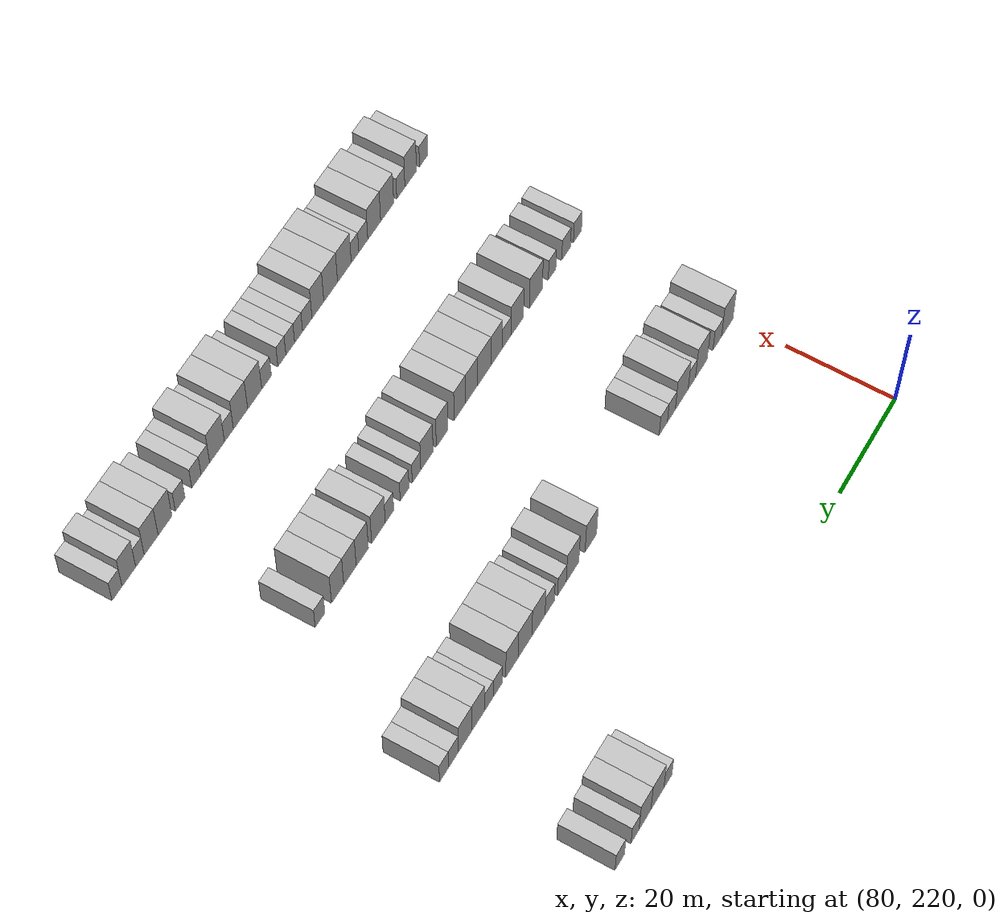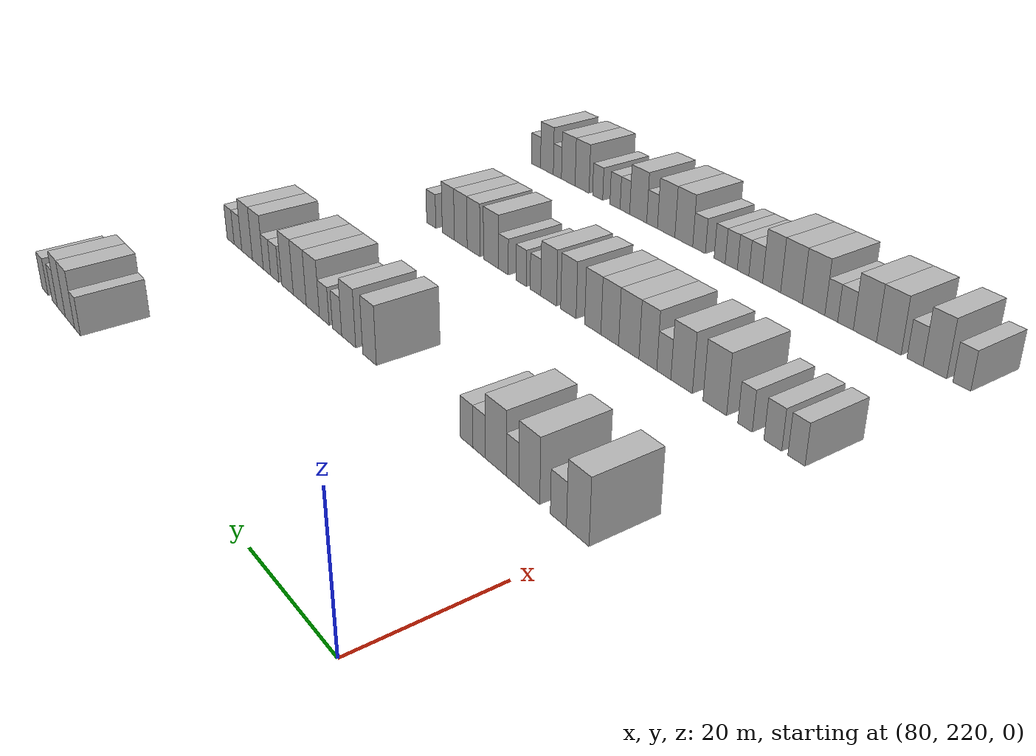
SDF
<sdf version="1.6">
 <world name="default">
  <model name="building_655">
   <static>1</static>
   <pose>85.0000 297.5379 0 0.000000 0.000000 0.000000</pose>
   <link name="link">
    <pose>0 0 3.00 0 0 0</pose>
    <collision name="collision"><geometry><box><size>10.0000 2.5687 6.0000</size></box></geometry></collision>
    <visual name="visual">
     <cast_shadows>0</cast_shadows>
     <geometry><box><size>10.0000 2.5687 6.0000</size></box></geometry>
     <material>
      <script>
       <uri>model://HANNAS_wall/materials/scripts</uri>
       <uri>model://HANNAS_wall/materials/textures</uri>
       <name>vrc/HANNAS_wall</name>
      </script>
     </material>
    </visual>
   </link>
  </model>
  <model name="building_656">
   <static>1</static>
   <pose>85.0000 300.8907 0 0.000000 0.000000 0.000000</pose>
   <link name="link">
    <pose>0 0 4.50 0 0 0</pose>
    <collision name="collision"><geometry><box><size>10.0000 4.1370 9.0000</size></box></geometry></collision>
    <visual name="visual">
     <cast_shadows>0</cast_shadows>
     <geometry><box><size>10.0000 4.1370 9.0000</size></box></geometry>
     <material>
      <script>
       <uri>model://HANNAS_wall/materials/scripts</uri>
       <uri>model://HANNAS_wall/materials/textures</uri>
       <name>vrc/HANNAS_wall</name>
      </script>
     </material>
    </visual>
   </link>
  </model>
  <model name="building_657">
   <static>1</static>
   <pose>85.0000 304.8185 0 0.000000 0.000000 0.000000</pose>
   <link name="link">
    <pose>0 0 4.50 0 0 0</pose>
    <collision name="collision"><geometry><box><size>10.0000 3.7185 9.0000</size></box></geometry></collision>
    <visual name="visual">
     <cast_shadows>0</cast_shadows>
     <geometry><box><size>10.0000 3.7185 9.0000</size></box></geometry>
     <material>
      <script>
       <uri>model://HANNAS_wall/materials/scripts</uri>
       <uri>model://HANNAS_wall/materials/textures</uri>
       <name>vrc/HANNAS_wall</name>
      </script>
     </material>
    </visual>
   </link>
  </model>
  <model name="building_658">
   <static>1</static>
   <pose>85.0000 307.9284 0 0.000000 0.000000 0.000000</pose>
   <link name="link">
    <pose>0 0 3.00 0 0 0</pose>
    <collision name="collision"><geometry><box><size>10.0000 2.5012 6.0000</size></box></geometry></collision>
    <visual name="visual">
     <cast_shadows>0</cast_shadows>
     <geometry><box><size>10.0000 2.5012 6.0000</size></box></geometry>
     <material>
      <script>
       <uri>model://HANNAS_wall/materials/scripts</uri>
       <uri>model://HANNAS_wall/materials/textures</uri>
       <name>vrc/HANNAS_wall</name>
      </script>
     </material>
    </visual>
   </link>
  </model>
  <model name="building_659">
   <static>1</static>
   <pose>85.0000 312.6503 0 0.000000 0.000000 0.000000</pose>
   <link name="link">
    <pose>0 0 3.00 0 0 0</pose>
    <collision name="collision"><geometry><box><size>10.0000 2.9426 6.0000</size></box></geometry></collision>
    <visual name="visual">
     <cast_shadows>0</cast_shadows>
     <geometry><box><size>10.0000 2.9426 6.0000</size></box></geometry>
     <material>
      <script>
       <uri>model://HANNAS_wall/materials/scripts</uri>
       <uri>model://HANNAS_wall/materials/textures</uri>
       <name>vrc/HANNAS_wall</name>
      </script>
     </material>
    </visual>
   </link>
  </model>
  <model name="building_862">
   <static>1</static>
   <pose>115.0000 221.7954 0 0.000000 0.000000 0.000000</pose>
   <link name="link">
    <pose>0 0 4.50 0 0 0</pose>
    <collision name="collision"><geometry><box><size>10.0000 4.0064 9.0000</size></box></geometry></collision>
    <visual name="visual">
     <cast_shadows>0</cast_shadows>
     <geometry><box><size>10.0000 4.0064 9.0000</size></box></geometry>
     <material>
      <script>
       <uri>model://HANNAS_wall/materials/scripts</uri>
       <uri>model://HANNAS_wall/materials/textures</uri>
       <name>vrc/HANNAS_wall</name>
      </script>
     </material>
    </visual>
   </link>
  </model>
  <model name="building_863">
   <static>1</static>
   <pose>115.0000 225.2836 0 0.000000 0.000000 0.000000</pose>
   <link name="link">
    <pose>0 0 3.00 0 0 0</pose>
    <collision name="collision"><geometry><box><size>10.0000 2.9700 6.0000</size></box></geometry></collision>
    <visual name="visual">
     <cast_shadows>0</cast_shadows>
     <geometry><box><size>10.0000 2.9700 6.0000</size></box></geometry>
     <material>
      <script>
       <uri>model://HANNAS_wall/materials/scripts</uri>
       <uri>model://HANNAS_wall/materials/textures</uri>
       <name>vrc/HANNAS_wall</name>
      </script>
     </material>
    </visual>
   </link>
  </model>
  <model name="building_864">
   <static>1</static>
   <pose>115.0000 230.7952 0 0.000000 0.000000 0.000000</pose>
   <link name="link">
    <pose>0 0 4.50 0 0 0</pose>
    <collision name="collision"><geometry><box><size>10.0000 4.0530 9.0000</size></box></geometry></collision>
    <visual name="visual">
     <cast_shadows>0</cast_shadows>
     <geometry><box><size>10.0000 4.0530 9.0000</size></box></geometry>
     <material>
      <script>
       <uri>model://HANNAS_wall/materials/scripts</uri>
       <uri>model://HANNAS_wall/materials/textures</uri>
       <name>vrc/HANNAS_wall</name>
      </script>
     </material>
    </visual>
   </link>
  </model>
  <model name="building_865">
   <static>1</static>
   <pose>115.0000 234.0746 0 0.000000 0.000000 0.000000</pose>
   <link name="link">
    <pose>0 0 3.00 0 0 0</pose>
    <collision name="collision"><geometry><box><size>10.0000 2.5057 6.0000</size></box></geometry></collision>
    <visual name="visual">
     <cast_shadows>0</cast_shadows>
     <geometry><box><size>10.0000 2.5057 6.0000</size></box></geometry>
     <material>
      <script>
       <uri>model://HANNAS_wall/materials/scripts</uri>
       <uri>model://HANNAS_wall/materials/textures</uri>
       <name>vrc/HANNAS_wall</name>
      </script>
     </material>
    </visual>
   </link>
  </model>
  <model name="building_866">
   <static>1</static>
   <pose>115.0000 237.5225 0 0.000000 0.000000 0.000000</pose>
   <link name="link">
    <pose>0 0 4.50 0 0 0</pose>
    <collision name="collision"><geometry><box><size>10.0000 4.3902 9.0000</size></box></geometry></collision>
    <visual name="visual">
     <cast_shadows>0</cast_shadows>
     <geometry><box><size>10.0000 4.3902 9.0000</size></box></geometry>
     <material>
      <script>
       <uri>model://HANNAS_wall/materials/scripts</uri>
       <uri>model://HANNAS_wall/materials/textures</uri>
       <name>vrc/HANNAS_wall</name>
      </script>
     </material>
    </visual>
   </link>
  </model>
  <model name="building_867">
   <static>1</static>
   <pose>115.0000 241.0570 0 0.000000 0.000000 0.000000</pose>
   <link name="link">
    <pose>0 0 3.00 0 0 0</pose>
    <collision name="collision"><geometry><box><size>10.0000 2.6788 6.0000</size></box></geometry></collision>
    <visual name="visual">
     <cast_shadows>0</cast_shadows>
     <geometry><box><size>10.0000 2.6788 6.0000</size></box></geometry>
     <material>
      <script>
       <uri>model://HANNAS_wall/materials/scripts</uri>
       <uri>model://HANNAS_wall/materials/textures</uri>
       <name>vrc/HANNAS_wall</name>
      </script>
     </material>
    </visual>
   </link>
  </model>
  <model name="building_868">
   <static>1</static>
   <pose>115.0000 243.7871 0 0.000000 0.000000 0.000000</pose>
   <link name="link">
    <pose>0 0 3.00 0 0 0</pose>
    <collision name="collision"><geometry><box><size>10.0000 2.7814 6.0000</size></box></geometry></collision>
    <visual name="visual">
     <cast_shadows>0</cast_shadows>
     <geometry><box><size>10.0000 2.7814 6.0000</size></box></geometry>
     <material>
      <script>
       <uri>model://HANNAS_wall/materials/scripts</uri>
       <uri>model://HANNAS_wall/materials/textures</uri>
       <name>vrc/HANNAS_wall</name>
      </script>
     </material>
    </visual>
   </link>
  </model>
  <model name="building_869">
   <static>1</static>
   <pose>115.0000 267.7866 0 0.000000 0.000000 0.000000</pose>
   <link name="link">
    <pose>0 0 4.50 0 0 0</pose>
    <collision name="collision"><geometry><box><size>10.0000 3.7392 9.0000</size></box></geometry></collision>
    <visual name="visual">
     <cast_shadows>0</cast_shadows>
     <geometry><box><size>10.0000 3.7392 9.0000</size></box></geometry>
     <material>
      <script>
       <uri>model://HANNAS_wall/materials/scripts</uri>
       <uri>model://HANNAS_wall/materials/textures</uri>
       <name>vrc/HANNAS_wall</name>
      </script>
     </material>
    </visual>
   </link>
  </model>
  <model name="building_870">
   <static>1</static>
   <pose>115.0000 273.6862 0 0.000000 0.000000 0.000000</pose>
   <link name="link">
    <pose>0 0 4.50 0 0 0</pose>
    <collision name="collision"><geometry><box><size>10.0000 4.0600 9.0000</size></box></geometry></collision>
    <visual name="visual">
     <cast_shadows>0</cast_shadows>
     <geometry><box><size>10.0000 4.0600 9.0000</size></box></geometry>
     <material>
      <script>
       <uri>model://HANNAS_wall/materials/scripts</uri>
       <uri>model://HANNAS_wall/materials/textures</uri>
       <name>vrc/HANNAS_wall</name>
      </script>
     </material>
    </visual>
   </link>
  </model>
  <model name="building_871">
   <static>1</static>
   <pose>115.0000 277.0938 0 0.000000 0.000000 0.000000</pose>
   <link name="link">
    <pose>0 0 3.00 0 0 0</pose>
    <collision name="collision"><geometry><box><size>10.0000 2.7552 6.0000</size></box></geometry></collision>
    <visual name="visual">
     <cast_shadows>0</cast_shadows>
     <geometry><box><size>10.0000 2.7552 6.0000</size></box></geometry>
     <material>
      <script>
       <uri>model://HANNAS_wall/materials/scripts</uri>
       <uri>model://HANNAS_wall/materials/textures</uri>
       <name>vrc/HANNAS_wall</name>
      </script>
     </material>
    </visual>
   </link>
  </model>
  <model name="building_872">
   <static>1</static>
   <pose>115.0000 280.9691 0 0.000000 0.000000 0.000000</pose>
   <link name="link">
    <pose>0 0 3.00 0 0 0</pose>
    <collision name="collision"><geometry><box><size>10.0000 2.9954 6.0000</size></box></geometry></collision>
    <visual name="visual">
     <cast_shadows>0</cast_shadows>
     <geometry><box><size>10.0000 2.9954 6.0000</size></box></geometry>
     <material>
      <script>
       <uri>model://HANNAS_wall/materials/scripts</uri>
       <uri>model://HANNAS_wall/materials/textures</uri>
       <name>vrc/HANNAS_wall</name>
      </script>
     </material>
    </visual>
   </link>
  </model>
  <model name="building_873">
   <static>1</static>
   <pose>115.0000 284.5456 0 0.000000 0.000000 0.000000</pose>
   <link name="link">
    <pose>0 0 4.50 0 0 0</pose>
    <collision name="collision"><geometry><box><size>10.0000 4.1577 9.0000</size></box></geometry></collision>
    <visual name="visual">
     <cast_shadows>0</cast_shadows>
     <geometry><box><size>10.0000 4.1577 9.0000</size></box></geometry>
     <material>
      <script>
       <uri>model://HANNAS_wall/materials/scripts</uri>
       <uri>model://HANNAS_wall/materials/textures</uri>
       <name>vrc/HANNAS_wall</name>
      </script>
     </material>
    </visual>
   </link>
  </model>
  <model name="building_874">
   <static>1</static>
   <pose>115.0000 288.7549 0 0.000000 0.000000 0.000000</pose>
   <link name="link">
    <pose>0 0 4.50 0 0 0</pose>
    <collision name="collision"><geometry><box><size>10.0000 4.2609 9.0000</size></box></geometry></collision>
    <visual name="visual">
     <cast_shadows>0</cast_shadows>
     <geometry><box><size>10.0000 4.2609 9.0000</size></box></geometry>
     <material>
      <script>
       <uri>model://HANNAS_wall/materials/scripts</uri>
       <uri>model://HANNAS_wall/materials/textures</uri>
       <name>vrc/HANNAS_wall</name>
      </script>
     </material>
    </visual>
   </link>
  </model>
  <model name="building_875">
   <static>1</static>
   <pose>115.0000 292.8371 0 0.000000 0.000000 0.000000</pose>
   <link name="link">
    <pose>0 0 4.50 0 0 0</pose>
    <collision name="collision"><geometry><box><size>10.0000 3.9036 9.0000</size></box></geometry></collision>
    <visual name="visual">
     <cast_shadows>0</cast_shadows>
     <geometry><box><size>10.0000 3.9036 9.0000</size></box></geometry>
     <material>
      <script>
       <uri>model://HANNAS_wall/materials/scripts</uri>
       <uri>model://HANNAS_wall/materials/textures</uri>
       <name>vrc/HANNAS_wall</name>
      </script>
     </material>
    </visual>
   </link>
  </model>
  <model name="building_876">
   <static>1</static>
   <pose>115.0000 297.2392 0 0.000000 0.000000 0.000000</pose>
   <link name="link">
    <pose>0 0 3.00 0 0 0</pose>
    <collision name="collision"><geometry><box><size>10.0000 2.9006 6.0000</size></box></geometry></collision>
    <visual name="visual">
     <cast_shadows>0</cast_shadows>
     <geometry><box><size>10.0000 2.9006 6.0000</size></box></geometry>
     <material>
      <script>
       <uri>model://HANNAS_wall/materials/scripts</uri>
       <uri>model://HANNAS_wall/materials/textures</uri>
       <name>vrc/HANNAS_wall</name>
      </script>
     </material>
    </visual>
   </link>
  </model>
  <model name="building_877">
   <static>1</static>
   <pose>115.0000 299.9895 0 0.000000 0.000000 0.000000</pose>
   <link name="link">
    <pose>0 0 3.00 0 0 0</pose>
    <collision name="collision"><geometry><box><size>10.0000 2.6001 6.0000</size></box></geometry></collision>
    <visual name="visual">
     <cast_shadows>0</cast_shadows>
     <geometry><box><size>10.0000 2.6001 6.0000</size></box></geometry>
     <material>
      <script>
       <uri>model://HANNAS_wall/materials/scripts</uri>
       <uri>model://HANNAS_wall/materials/textures</uri>
       <name>vrc/HANNAS_wall</name>
      </script>
     </material>
    </visual>
   </link>
  </model>
  <model name="building_878">
   <static>1</static>
   <pose>115.0000 303.2805 0 0.000000 0.000000 0.000000</pose>
   <link name="link">
    <pose>0 0 4.50 0 0 0</pose>
    <collision name="collision"><geometry><box><size>10.0000 3.9819 9.0000</size></box></geometry></collision>
    <visual name="visual">
     <cast_shadows>0</cast_shadows>
     <geometry><box><size>10.0000 3.9819 9.0000</size></box></geometry>
     <material>
      <script>
       <uri>model://HANNAS_wall/materials/scripts</uri>
       <uri>model://HANNAS_wall/materials/textures</uri>
       <name>vrc/HANNAS_wall</name>
      </script>
     </material>
    </visual>
   </link>
  </model>
  <model name="building_879">
   <static>1</static>
   <pose>115.0000 307.2741 0 0.000000 0.000000 0.000000</pose>
   <link name="link">
    <pose>0 0 4.50 0 0 0</pose>
    <collision name="collision"><geometry><box><size>10.0000 4.0054 9.0000</size></box></geometry></collision>
    <visual name="visual">
     <cast_shadows>0</cast_shadows>
     <geometry><box><size>10.0000 4.0054 9.0000</size></box></geometry>
     <material>
      <script>
       <uri>model://HANNAS_wall/materials/scripts</uri>
       <uri>model://HANNAS_wall/materials/textures</uri>
       <name>vrc/HANNAS_wall</name>
      </script>
     </material>
    </visual>
   </link>
  </model>
  <model name="building_880">
   <static>1</static>
   <pose>115.0000 310.7571 0 0.000000 0.000000 0.000000</pose>
   <link name="link">
    <pose>0 0 3.00 0 0 0</pose>
    <collision name="collision"><geometry><box><size>10.0000 2.9605 6.0000</size></box></geometry></collision>
    <visual name="visual">
     <cast_shadows>0</cast_shadows>
     <geometry><box><size>10.0000 2.9605 6.0000</size></box></geometry>
     <material>
      <script>
       <uri>model://HANNAS_wall/materials/scripts</uri>
       <uri>model://HANNAS_wall/materials/textures</uri>
       <name>vrc/HANNAS_wall</name>
      </script>
     </material>
    </visual>
   </link>
  </model>
  <model name="building_881">
   <static>1</static>
   <pose>115.0000 313.6159 0 0.000000 0.000000 0.000000</pose>
   <link name="link">
    <pose>0 0 3.00 0 0 0</pose>
    <collision name="collision"><geometry><box><size>10.0000 2.7571 6.0000</size></box></geometry></collision>
    <visual name="visual">
     <cast_shadows>0</cast_shadows>
     <geometry><box><size>10.0000 2.7571 6.0000</size></box></geometry>
     <material>
      <script>
       <uri>model://HANNAS_wall/materials/scripts</uri>
       <uri>model://HANNAS_wall/materials/textures</uri>
       <name>vrc/HANNAS_wall</name>
      </script>
     </material>
    </visual>
   </link>
  </model>
  <model name="building_1087">
   <static>1</static>
   <pose>145.0000 218.6086 0 0.000000 0.000000 0.000000</pose>
   <link name="link">
    <pose>0 0 3.00 0 0 0</pose>
    <collision name="collision"><geometry><box><size>10.0000 2.7559 6.0000</size></box></geometry></collision>
    <visual name="visual">
     <cast_shadows>0</cast_shadows>
     <geometry><box><size>10.0000 2.7559 6.0000</size></box></geometry>
     <material>
      <script>
       <uri>model://HANNAS_wall/materials/scripts</uri>
       <uri>model://HANNAS_wall/materials/textures</uri>
       <name>vrc/HANNAS_wall</name>
      </script>
     </material>
    </visual>
   </link>
  </model>
  <model name="building_1088">
   <static>1</static>
   <pose>145.0000 222.4659 0 0.000000 0.000000 0.000000</pose>
   <link name="link">
    <pose>0 0 3.00 0 0 0</pose>
    <collision name="collision"><geometry><box><size>10.0000 2.9586 6.0000</size></box></geometry></collision>
    <visual name="visual">
     <cast_shadows>0</cast_shadows>
     <geometry><box><size>10.0000 2.9586 6.0000</size></box></geometry>
     <material>
      <script>
       <uri>model://HANNAS_wall/materials/scripts</uri>
       <uri>model://HANNAS_wall/materials/textures</uri>
       <name>vrc/HANNAS_wall</name>
      </script>
     </material>
    </visual>
   </link>
  </model>
  <model name="building_1089">
   <static>1</static>
   <pose>145.0000 227.2015 0 0.000000 0.000000 0.000000</pose>
   <link name="link">
    <pose>0 0 3.00 0 0 0</pose>
    <collision name="collision"><geometry><box><size>10.0000 2.5126 6.0000</size></box></geometry></collision>
    <visual name="visual">
     <cast_shadows>0</cast_shadows>
     <geometry><box><size>10.0000 2.5126 6.0000</size></box></geometry>
     <material>
      <script>
       <uri>model://HANNAS_wall/materials/scripts</uri>
       <uri>model://HANNAS_wall/materials/textures</uri>
       <name>vrc/HANNAS_wall</name>
      </script>
     </material>
    </visual>
   </link>
  </model>
  <model name="building_1090">
   <static>1</static>
   <pose>145.0000 232.6195 0 0.000000 0.000000 0.000000</pose>
   <link name="link">
    <pose>0 0 4.50 0 0 0</pose>
    <collision name="collision"><geometry><box><size>10.0000 4.3235 9.0000</size></box></geometry></collision>
    <visual name="visual">
     <cast_shadows>0</cast_shadows>
     <geometry><box><size>10.0000 4.3235 9.0000</size></box></geometry>
     <material>
      <script>
       <uri>model://HANNAS_wall/materials/scripts</uri>
       <uri>model://HANNAS_wall/materials/textures</uri>
       <name>vrc/HANNAS_wall</name>
      </script>
     </material>
    </visual>
   </link>
  </model>
  <model name="building_1091">
   <static>1</static>
   <pose>145.0000 238.8709 0 0.000000 0.000000 0.000000</pose>
   <link name="link">
    <pose>0 0 4.50 0 0 0</pose>
    <collision name="collision"><geometry><box><size>10.0000 4.1792 9.0000</size></box></geometry></collision>
    <visual name="visual">
     <cast_shadows>0</cast_shadows>
     <geometry><box><size>10.0000 4.1792 9.0000</size></box></geometry>
     <material>
      <script>
       <uri>model://HANNAS_wall/materials/scripts</uri>
       <uri>model://HANNAS_wall/materials/textures</uri>
       <name>vrc/HANNAS_wall</name>
      </script>
     </material>
    </visual>
   </link>
  </model>
  <model name="building_1092">
   <static>1</static>
   <pose>145.0000 242.3662 0 0.000000 0.000000 0.000000</pose>
   <link name="link">
    <pose>0 0 3.00 0 0 0</pose>
    <collision name="collision"><geometry><box><size>10.0000 2.8114 6.0000</size></box></geometry></collision>
    <visual name="visual">
     <cast_shadows>0</cast_shadows>
     <geometry><box><size>10.0000 2.8114 6.0000</size></box></geometry>
     <material>
      <script>
       <uri>model://HANNAS_wall/materials/scripts</uri>
       <uri>model://HANNAS_wall/materials/textures</uri>
       <name>vrc/HANNAS_wall</name>
      </script>
     </material>
    </visual>
   </link>
  </model>
  <model name="building_1093">
   <static>1</static>
   <pose>145.0000 245.6088 0 0.000000 0.000000 0.000000</pose>
   <link name="link">
    <pose>0 0 4.50 0 0 0</pose>
    <collision name="collision"><geometry><box><size>10.0000 3.6739 9.0000</size></box></geometry></collision>
    <visual name="visual">
     <cast_shadows>0</cast_shadows>
     <geometry><box><size>10.0000 3.6739 9.0000</size></box></geometry>
     <material>
      <script>
       <uri>model://HANNAS_wall/materials/scripts</uri>
       <uri>model://HANNAS_wall/materials/textures</uri>
       <name>vrc/HANNAS_wall</name>
      </script>
     </material>
    </visual>
   </link>
  </model>
  <model name="building_1094">
   <static>1</static>
   <pose>145.0000 249.6107 0 0.000000 0.000000 0.000000</pose>
   <link name="link">
    <pose>0 0 4.50 0 0 0</pose>
    <collision name="collision"><geometry><box><size>10.0000 4.3299 9.0000</size></box></geometry></collision>
    <visual name="visual">
     <cast_shadows>0</cast_shadows>
     <geometry><box><size>10.0000 4.3299 9.0000</size></box></geometry>
     <material>
      <script>
       <uri>model://HANNAS_wall/materials/scripts</uri>
       <uri>model://HANNAS_wall/materials/textures</uri>
       <name>vrc/HANNAS_wall</name>
      </script>
     </material>
    </visual>
   </link>
  </model>
  <model name="building_1095">
   <static>1</static>
   <pose>145.0000 253.7339 0 0.000000 0.000000 0.000000</pose>
   <link name="link">
    <pose>0 0 4.50 0 0 0</pose>
    <collision name="collision"><geometry><box><size>10.0000 3.9165 9.0000</size></box></geometry></collision>
    <visual name="visual">
     <cast_shadows>0</cast_shadows>
     <geometry><box><size>10.0000 3.9165 9.0000</size></box></geometry>
     <material>
      <script>
       <uri>model://HANNAS_wall/materials/scripts</uri>
       <uri>model://HANNAS_wall/materials/textures</uri>
       <name>vrc/HANNAS_wall</name>
      </script>
     </material>
    </visual>
   </link>
  </model>
  <model name="building_1096">
   <static>1</static>
   <pose>145.0000 257.5340 0 0.000000 0.000000 0.000000</pose>
   <link name="link">
    <pose>0 0 4.50 0 0 0</pose>
    <collision name="collision"><geometry><box><size>10.0000 3.6835 9.0000</size></box></geometry></collision>
    <visual name="visual">
     <cast_shadows>0</cast_shadows>
     <geometry><box><size>10.0000 3.6835 9.0000</size></box></geometry>
     <material>
      <script>
       <uri>model://HANNAS_wall/materials/scripts</uri>
       <uri>model://HANNAS_wall/materials/textures</uri>
       <name>vrc/HANNAS_wall</name>
      </script>
     </material>
    </visual>
   </link>
  </model>
  <model name="building_1097">
   <static>1</static>
   <pose>145.0000 263.2091 0 0.000000 0.000000 0.000000</pose>
   <link name="link">
    <pose>0 0 4.50 0 0 0</pose>
    <collision name="collision"><geometry><box><size>10.0000 3.6668 9.0000</size></box></geometry></collision>
    <visual name="visual">
     <cast_shadows>0</cast_shadows>
     <geometry><box><size>10.0000 3.6668 9.0000</size></box></geometry>
     <material>
      <script>
       <uri>model://HANNAS_wall/materials/scripts</uri>
       <uri>model://HANNAS_wall/materials/textures</uri>
       <name>vrc/HANNAS_wall</name>
      </script>
     </material>
    </visual>
   </link>
  </model>
  <model name="building_1098">
   <static>1</static>
   <pose>145.0000 267.9923 0 0.000000 0.000000 0.000000</pose>
   <link name="link">
    <pose>0 0 4.50 0 0 0</pose>
    <collision name="collision"><geometry><box><size>10.0000 3.8995 9.0000</size></box></geometry></collision>
    <visual name="visual">
     <cast_shadows>0</cast_shadows>
     <geometry><box><size>10.0000 3.8995 9.0000</size></box></geometry>
     <material>
      <script>
       <uri>model://HANNAS_wall/materials/scripts</uri>
       <uri>model://HANNAS_wall/materials/textures</uri>
       <name>vrc/HANNAS_wall</name>
      </script>
     </material>
    </visual>
   </link>
  </model>
  <model name="building_1099">
   <static>1</static>
   <pose>145.0000 271.2844 0 0.000000 0.000000 0.000000</pose>
   <link name="link">
    <pose>0 0 3.00 0 0 0</pose>
    <collision name="collision"><geometry><box><size>10.0000 2.6846 6.0000</size></box></geometry></collision>
    <visual name="visual">
     <cast_shadows>0</cast_shadows>
     <geometry><box><size>10.0000 2.6846 6.0000</size></box></geometry>
     <material>
      <script>
       <uri>model://HANNAS_wall/materials/scripts</uri>
       <uri>model://HANNAS_wall/materials/textures</uri>
       <name>vrc/HANNAS_wall</name>
      </script>
     </material>
    </visual>
   </link>
  </model>
  <model name="building_1100">
   <static>1</static>
   <pose>145.0000 275.0013 0 0.000000 0.000000 0.000000</pose>
   <link name="link">
    <pose>0 0 3.00 0 0 0</pose>
    <collision name="collision"><geometry><box><size>10.0000 2.7493 6.0000</size></box></geometry></collision>
    <visual name="visual">
     <cast_shadows>0</cast_shadows>
     <geometry><box><size>10.0000 2.7493 6.0000</size></box></geometry>
     <material>
      <script>
       <uri>model://HANNAS_wall/materials/scripts</uri>
       <uri>model://HANNAS_wall/materials/textures</uri>
       <name>vrc/HANNAS_wall</name>
      </script>
     </material>
    </visual>
   </link>
  </model>
  <model name="building_1101">
   <static>1</static>
   <pose>145.0000 279.6919 0 0.000000 0.000000 0.000000</pose>
   <link name="link">
    <pose>0 0 3.00 0 0 0</pose>
    <collision name="collision"><geometry><box><size>10.0000 2.6320 6.0000</size></box></geometry></collision>
    <visual name="visual">
     <cast_shadows>0</cast_shadows>
     <geometry><box><size>10.0000 2.6320 6.0000</size></box></geometry>
     <material>
      <script>
       <uri>model://HANNAS_wall/materials/scripts</uri>
       <uri>model://HANNAS_wall/materials/textures</uri>
       <name>vrc/HANNAS_wall</name>
      </script>
     </material>
    </visual>
   </link>
  </model>
  <model name="building_1102">
   <static>1</static>
   <pose>145.0000 283.0985 0 0.000000 0.000000 0.000000</pose>
   <link name="link">
    <pose>0 0 4.50 0 0 0</pose>
    <collision name="collision"><geometry><box><size>10.0000 4.1812 9.0000</size></box></geometry></collision>
    <visual name="visual">
     <cast_shadows>0</cast_shadows>
     <geometry><box><size>10.0000 4.1812 9.0000</size></box></geometry>
     <material>
      <script>
       <uri>model://HANNAS_wall/materials/scripts</uri>
       <uri>model://HANNAS_wall/materials/textures</uri>
       <name>vrc/HANNAS_wall</name>
      </script>
     </material>
    </visual>
   </link>
  </model>
  <model name="building_1103">
   <static>1</static>
   <pose>145.0000 288.0449 0 0.000000 0.000000 0.000000</pose>
   <link name="link">
    <pose>0 0 4.50 0 0 0</pose>
    <collision name="collision"><geometry><box><size>10.0000 3.7116 9.0000</size></box></geometry></collision>
    <visual name="visual">
     <cast_shadows>0</cast_shadows>
     <geometry><box><size>10.0000 3.7116 9.0000</size></box></geometry>
     <material>
      <script>
       <uri>model://HANNAS_wall/materials/scripts</uri>
       <uri>model://HANNAS_wall/materials/textures</uri>
       <name>vrc/HANNAS_wall</name>
      </script>
     </material>
    </visual>
   </link>
  </model>
  <model name="building_1104">
   <static>1</static>
   <pose>145.0000 291.7874 0 0.000000 0.000000 0.000000</pose>
   <link name="link">
    <pose>0 0 4.50 0 0 0</pose>
    <collision name="collision"><geometry><box><size>10.0000 3.7734 9.0000</size></box></geometry></collision>
    <visual name="visual">
     <cast_shadows>0</cast_shadows>
     <geometry><box><size>10.0000 3.7734 9.0000</size></box></geometry>
     <material>
      <script>
       <uri>model://HANNAS_wall/materials/scripts</uri>
       <uri>model://HANNAS_wall/materials/textures</uri>
       <name>vrc/HANNAS_wall</name>
      </script>
     </material>
    </visual>
   </link>
  </model>
  <model name="building_1105">
   <static>1</static>
   <pose>145.0000 295.5164 0 0.000000 0.000000 0.000000</pose>
   <link name="link">
    <pose>0 0 4.50 0 0 0</pose>
    <collision name="collision"><geometry><box><size>10.0000 3.6847 9.0000</size></box></geometry></collision>
    <visual name="visual">
     <cast_shadows>0</cast_shadows>
     <geometry><box><size>10.0000 3.6847 9.0000</size></box></geometry>
     <material>
      <script>
       <uri>model://HANNAS_wall/materials/scripts</uri>
       <uri>model://HANNAS_wall/materials/textures</uri>
       <name>vrc/HANNAS_wall</name>
      </script>
     </material>
    </visual>
   </link>
  </model>
  <model name="building_1106">
   <static>1</static>
   <pose>145.0000 300.8026 0 0.000000 0.000000 0.000000</pose>
   <link name="link">
    <pose>0 0 3.00 0 0 0</pose>
    <collision name="collision"><geometry><box><size>10.0000 2.8877 6.0000</size></box></geometry></collision>
    <visual name="visual">
     <cast_shadows>0</cast_shadows>
     <geometry><box><size>10.0000 2.8877 6.0000</size></box></geometry>
     <material>
      <script>
       <uri>model://HANNAS_wall/materials/scripts</uri>
       <uri>model://HANNAS_wall/materials/textures</uri>
       <name>vrc/HANNAS_wall</name>
      </script>
     </material>
    </visual>
   </link>
  </model>
  <model name="building_1318">
   <static>1</static>
   <pose>175.0000 218.3453 0 0.000000 0.000000 0.000000</pose>
   <link name="link">
    <pose>0 0 3.00 0 0 0</pose>
    <collision name="collision"><geometry><box><size>10.0000 2.7789 6.0000</size></box></geometry></collision>
    <visual name="visual">
     <cast_shadows>0</cast_shadows>
     <geometry><box><size>10.0000 2.7789 6.0000</size></box></geometry>
     <material>
      <script>
       <uri>model://HANNAS_wall/materials/scripts</uri>
       <uri>model://HANNAS_wall/materials/textures</uri>
       <name>vrc/HANNAS_wall</name>
      </script>
     </material>
    </visual>
   </link>
  </model>
  <model name="building_1319">
   <static>1</static>
   <pose>175.0000 222.6469 0 0.000000 0.000000 0.000000</pose>
   <link name="link">
    <pose>0 0 4.50 0 0 0</pose>
    <collision name="collision"><geometry><box><size>10.0000 3.8243 9.0000</size></box></geometry></collision>
    <visual name="visual">
     <cast_shadows>0</cast_shadows>
     <geometry><box><size>10.0000 3.8243 9.0000</size></box></geometry>
     <material>
      <script>
       <uri>model://HANNAS_wall/materials/scripts</uri>
       <uri>model://HANNAS_wall/materials/textures</uri>
       <name>vrc/HANNAS_wall</name>
      </script>
     </material>
    </visual>
   </link>
  </model>
  <model name="building_1320">
   <static>1</static>
   <pose>175.0000 225.8965 0 0.000000 0.000000 0.000000</pose>
   <link name="link">
    <pose>0 0 3.00 0 0 0</pose>
    <collision name="collision"><geometry><box><size>10.0000 2.6749 6.0000</size></box></geometry></collision>
    <visual name="visual">
     <cast_shadows>0</cast_shadows>
     <geometry><box><size>10.0000 2.6749 6.0000</size></box></geometry>
     <material>
      <script>
       <uri>model://HANNAS_wall/materials/scripts</uri>
       <uri>model://HANNAS_wall/materials/textures</uri>
       <name>vrc/HANNAS_wall</name>
      </script>
     </material>
    </visual>
   </link>
  </model>
  <model name="building_1321">
   <static>1</static>
   <pose>175.0000 230.3620 0 0.000000 0.000000 0.000000</pose>
   <link name="link">
    <pose>0 0 4.50 0 0 0</pose>
    <collision name="collision"><geometry><box><size>10.0000 4.2560 9.0000</size></box></geometry></collision>
    <visual name="visual">
     <cast_shadows>0</cast_shadows>
     <geometry><box><size>10.0000 4.2560 9.0000</size></box></geometry>
     <material>
      <script>
       <uri>model://HANNAS_wall/materials/scripts</uri>
       <uri>model://HANNAS_wall/materials/textures</uri>
       <name>vrc/HANNAS_wall</name>
      </script>
     </material>
    </visual>
   </link>
  </model>
  <model name="building_1322">
   <static>1</static>
   <pose>175.0000 234.5758 0 0.000000 0.000000 0.000000</pose>
   <link name="link">
    <pose>0 0 4.50 0 0 0</pose>
    <collision name="collision"><geometry><box><size>10.0000 4.1717 9.0000</size></box></geometry></collision>
    <visual name="visual">
     <cast_shadows>0</cast_shadows>
     <geometry><box><size>10.0000 4.1717 9.0000</size></box></geometry>
     <material>
      <script>
       <uri>model://HANNAS_wall/materials/scripts</uri>
       <uri>model://HANNAS_wall/materials/textures</uri>
       <name>vrc/HANNAS_wall</name>
      </script>
     </material>
    </visual>
   </link>
  </model>
  <model name="building_1323">
   <static>1</static>
   <pose>175.0000 238.1075 0 0.000000 0.000000 0.000000</pose>
   <link name="link">
    <pose>0 0 3.00 0 0 0</pose>
    <collision name="collision"><geometry><box><size>10.0000 2.8917 6.0000</size></box></geometry></collision>
    <visual name="visual">
     <cast_shadows>0</cast_shadows>
     <geometry><box><size>10.0000 2.8917 6.0000</size></box></geometry>
     <material>
      <script>
       <uri>model://HANNAS_wall/materials/scripts</uri>
       <uri>model://HANNAS_wall/materials/textures</uri>
       <name>vrc/HANNAS_wall</name>
      </script>
     </material>
    </visual>
   </link>
  </model>
  <model name="building_1324">
   <static>1</static>
   <pose>175.0000 240.7659 0 0.000000 0.000000 0.000000</pose>
   <link name="link">
    <pose>0 0 3.00 0 0 0</pose>
    <collision name="collision"><geometry><box><size>10.0000 2.4250 6.0000</size></box></geometry></collision>
    <visual name="visual">
     <cast_shadows>0</cast_shadows>
     <geometry><box><size>10.0000 2.4250 6.0000</size></box></geometry>
     <material>
      <script>
       <uri>model://HANNAS_wall/materials/scripts</uri>
       <uri>model://HANNAS_wall/materials/textures</uri>
       <name>vrc/HANNAS_wall</name>
      </script>
     </material>
    </visual>
   </link>
  </model>
  <model name="building_1325">
   <static>1</static>
   <pose>175.0000 244.1641 0 0.000000 0.000000 0.000000</pose>
   <link name="link">
    <pose>0 0 4.50 0 0 0</pose>
    <collision name="collision"><geometry><box><size>10.0000 4.3715 9.0000</size></box></geometry></collision>
    <visual name="visual">
     <cast_shadows>0</cast_shadows>
     <geometry><box><size>10.0000 4.3715 9.0000</size></box></geometry>
     <material>
      <script>
       <uri>model://HANNAS_wall/materials/scripts</uri>
       <uri>model://HANNAS_wall/materials/textures</uri>
       <name>vrc/HANNAS_wall</name>
      </script>
     </material>
    </visual>
   </link>
  </model>
  <model name="building_1326">
   <static>1</static>
   <pose>175.0000 248.5265 0 0.000000 0.000000 0.000000</pose>
   <link name="link">
    <pose>0 0 4.50 0 0 0</pose>
    <collision name="collision"><geometry><box><size>10.0000 4.3533 9.0000</size></box></geometry></collision>
    <visual name="visual">
     <cast_shadows>0</cast_shadows>
     <geometry><box><size>10.0000 4.3533 9.0000</size></box></geometry>
     <material>
      <script>
       <uri>model://HANNAS_wall/materials/scripts</uri>
       <uri>model://HANNAS_wall/materials/textures</uri>
       <name>vrc/HANNAS_wall</name>
      </script>
     </material>
    </visual>
   </link>
  </model>
  <model name="building_1327">
   <static>1</static>
   <pose>175.0000 252.5738 0 0.000000 0.000000 0.000000</pose>
   <link name="link">
    <pose>0 0 4.50 0 0 0</pose>
    <collision name="collision"><geometry><box><size>10.0000 3.7412 9.0000</size></box></geometry></collision>
    <visual name="visual">
     <cast_shadows>0</cast_shadows>
     <geometry><box><size>10.0000 3.7412 9.0000</size></box></geometry>
     <material>
      <script>
       <uri>model://HANNAS_wall/materials/scripts</uri>
       <uri>model://HANNAS_wall/materials/textures</uri>
       <name>vrc/HANNAS_wall</name>
      </script>
     </material>
    </visual>
   </link>
  </model>
  <model name="building_1328">
   <static>1</static>
   <pose>175.0000 255.9090 0 0.000000 0.000000 0.000000</pose>
   <link name="link">
    <pose>0 0 3.00 0 0 0</pose>
    <collision name="collision"><geometry><box><size>10.0000 2.9292 6.0000</size></box></geometry></collision>
    <visual name="visual">
     <cast_shadows>0</cast_shadows>
     <geometry><box><size>10.0000 2.9292 6.0000</size></box></geometry>
     <material>
      <script>
       <uri>model://HANNAS_wall/materials/scripts</uri>
       <uri>model://HANNAS_wall/materials/textures</uri>
       <name>vrc/HANNAS_wall</name>
      </script>
     </material>
    </visual>
   </link>
  </model>
  <model name="building_1329">
   <static>1</static>
   <pose>175.0000 258.6170 0 0.000000 0.000000 0.000000</pose>
   <link name="link">
    <pose>0 0 3.00 0 0 0</pose>
    <collision name="collision"><geometry><box><size>10.0000 2.4869 6.0000</size></box></geometry></collision>
    <visual name="visual">
     <cast_shadows>0</cast_shadows>
     <geometry><box><size>10.0000 2.4869 6.0000</size></box></geometry>
     <material>
      <script>
       <uri>model://HANNAS_wall/materials/scripts</uri>
       <uri>model://HANNAS_wall/materials/textures</uri>
       <name>vrc/HANNAS_wall</name>
      </script>
     </material>
    </visual>
   </link>
  </model>
  <model name="building_1330">
   <static>1</static>
   <pose>175.0000 261.2171 0 0.000000 0.000000 0.000000</pose>
   <link name="link">
    <pose>0 0 3.00 0 0 0</pose>
    <collision name="collision"><geometry><box><size>10.0000 2.7133 6.0000</size></box></geometry></collision>
    <visual name="visual">
     <cast_shadows>0</cast_shadows>
     <geometry><box><size>10.0000 2.7133 6.0000</size></box></geometry>
     <material>
      <script>
       <uri>model://HANNAS_wall/materials/scripts</uri>
       <uri>model://HANNAS_wall/materials/textures</uri>
       <name>vrc/HANNAS_wall</name>
      </script>
     </material>
    </visual>
   </link>
  </model>
  <model name="building_1331">
   <static>1</static>
   <pose>175.0000 263.8157 0 0.000000 0.000000 0.000000</pose>
   <link name="link">
    <pose>0 0 3.00 0 0 0</pose>
    <collision name="collision"><geometry><box><size>10.0000 2.4838 6.0000</size></box></geometry></collision>
    <visual name="visual">
     <cast_shadows>0</cast_shadows>
     <geometry><box><size>10.0000 2.4838 6.0000</size></box></geometry>
     <material>
      <script>
       <uri>model://HANNAS_wall/materials/scripts</uri>
       <uri>model://HANNAS_wall/materials/textures</uri>
       <name>vrc/HANNAS_wall</name>
      </script>
     </material>
    </visual>
   </link>
  </model>
  <model name="building_1332">
   <static>1</static>
   <pose>175.0000 268.5374 0 0.000000 0.000000 0.000000</pose>
   <link name="link">
    <pose>0 0 3.00 0 0 0</pose>
    <collision name="collision"><geometry><box><size>10.0000 2.9596 6.0000</size></box></geometry></collision>
    <visual name="visual">
     <cast_shadows>0</cast_shadows>
     <geometry><box><size>10.0000 2.9596 6.0000</size></box></geometry>
     <material>
      <script>
       <uri>model://HANNAS_wall/materials/scripts</uri>
       <uri>model://HANNAS_wall/materials/textures</uri>
       <name>vrc/HANNAS_wall</name>
      </script>
     </material>
    </visual>
   </link>
  </model>
  <model name="building_1333">
   <static>1</static>
   <pose>175.0000 272.1684 0 0.000000 0.000000 0.000000</pose>
   <link name="link">
    <pose>0 0 4.50 0 0 0</pose>
    <collision name="collision"><geometry><box><size>10.0000 4.3024 9.0000</size></box></geometry></collision>
    <visual name="visual">
     <cast_shadows>0</cast_shadows>
     <geometry><box><size>10.0000 4.3024 9.0000</size></box></geometry>
     <material>
      <script>
       <uri>model://HANNAS_wall/materials/scripts</uri>
       <uri>model://HANNAS_wall/materials/textures</uri>
       <name>vrc/HANNAS_wall</name>
      </script>
     </material>
    </visual>
   </link>
  </model>
  <model name="building_1334">
   <static>1</static>
   <pose>175.0000 276.4741 0 0.000000 0.000000 0.000000</pose>
   <link name="link">
    <pose>0 0 4.50 0 0 0</pose>
    <collision name="collision"><geometry><box><size>10.0000 4.3090 9.0000</size></box></geometry></collision>
    <visual name="visual">
     <cast_shadows>0</cast_shadows>
     <geometry><box><size>10.0000 4.3090 9.0000</size></box></geometry>
     <material>
      <script>
       <uri>model://HANNAS_wall/materials/scripts</uri>
       <uri>model://HANNAS_wall/materials/textures</uri>
       <name>vrc/HANNAS_wall</name>
      </script>
     </material>
    </visual>
   </link>
  </model>
  <model name="building_1335">
   <static>1</static>
   <pose>175.0000 279.9864 0 0.000000 0.000000 0.000000</pose>
   <link name="link">
    <pose>0 0 3.00 0 0 0</pose>
    <collision name="collision"><geometry><box><size>10.0000 2.7155 6.0000</size></box></geometry></collision>
    <visual name="visual">
     <cast_shadows>0</cast_shadows>
     <geometry><box><size>10.0000 2.7155 6.0000</size></box></geometry>
     <material>
      <script>
       <uri>model://HANNAS_wall/materials/scripts</uri>
       <uri>model://HANNAS_wall/materials/textures</uri>
       <name>vrc/HANNAS_wall</name>
      </script>
     </material>
    </visual>
   </link>
  </model>
  <model name="building_1336">
   <static>1</static>
   <pose>175.0000 283.5645 0 0.000000 0.000000 0.000000</pose>
   <link name="link">
    <pose>0 0 4.50 0 0 0</pose>
    <collision name="collision"><geometry><box><size>10.0000 4.4408 9.0000</size></box></geometry></collision>
    <visual name="visual">
     <cast_shadows>0</cast_shadows>
     <geometry><box><size>10.0000 4.4408 9.0000</size></box></geometry>
     <material>
      <script>
       <uri>model://HANNAS_wall/materials/scripts</uri>
       <uri>model://HANNAS_wall/materials/textures</uri>
       <name>vrc/HANNAS_wall</name>
      </script>
     </material>
    </visual>
   </link>
  </model>
  <model name="building_1337">
   <static>1</static>
   <pose>175.0000 287.0555 0 0.000000 0.000000 0.000000</pose>
   <link name="link">
    <pose>0 0 3.00 0 0 0</pose>
    <collision name="collision"><geometry><box><size>10.0000 2.5413 6.0000</size></box></geometry></collision>
    <visual name="visual">
     <cast_shadows>0</cast_shadows>
     <geometry><box><size>10.0000 2.5413 6.0000</size></box></geometry>
     <material>
      <script>
       <uri>model://HANNAS_wall/materials/scripts</uri>
       <uri>model://HANNAS_wall/materials/textures</uri>
       <name>vrc/HANNAS_wall</name>
      </script>
     </material>
    </visual>
   </link>
  </model>
  <model name="building_1338">
   <static>1</static>
   <pose>175.0000 289.7080 0 0.000000 0.000000 0.000000</pose>
   <link name="link">
    <pose>0 0 3.00 0 0 0</pose>
    <collision name="collision"><geometry><box><size>10.0000 2.7636 6.0000</size></box></geometry></collision>
    <visual name="visual">
     <cast_shadows>0</cast_shadows>
     <geometry><box><size>10.0000 2.7636 6.0000</size></box></geometry>
     <material>
      <script>
       <uri>model://HANNAS_wall/materials/scripts</uri>
       <uri>model://HANNAS_wall/materials/textures</uri>
       <name>vrc/HANNAS_wall</name>
      </script>
     </material>
    </visual>
   </link>
  </model>
  <model name="building_1339">
   <static>1</static>
   <pose>175.0000 294.5073 0 0.000000 0.000000 0.000000</pose>
   <link name="link">
    <pose>0 0 3.00 0 0 0</pose>
    <collision name="collision"><geometry><box><size>10.0000 2.8351 6.0000</size></box></geometry></collision>
    <visual name="visual">
     <cast_shadows>0</cast_shadows>
     <geometry><box><size>10.0000 2.8351 6.0000</size></box></geometry>
     <material>
      <script>
       <uri>model://HANNAS_wall/materials/scripts</uri>
       <uri>model://HANNAS_wall/materials/textures</uri>
       <name>vrc/HANNAS_wall</name>
      </script>
     </material>
    </visual>
   </link>
  </model>
  <model name="building_1340">
   <static>1</static>
   <pose>175.0000 298.9422 0 0.000000 0.000000 0.000000</pose>
   <link name="link">
    <pose>0 0 4.50 0 0 0</pose>
    <collision name="collision"><geometry><box><size>10.0000 4.0346 9.0000</size></box></geometry></collision>
    <visual name="visual">
     <cast_shadows>0</cast_shadows>
     <geometry><box><size>10.0000 4.0346 9.0000</size></box></geometry>
     <material>
      <script>
       <uri>model://HANNAS_wall/materials/scripts</uri>
       <uri>model://HANNAS_wall/materials/textures</uri>
       <name>vrc/HANNAS_wall</name>
      </script>
     </material>
    </visual>
   </link>
  </model>
  <model name="building_1341">
   <static>1</static>
   <pose>175.0000 302.9802 0 0.000000 0.000000 0.000000</pose>
   <link name="link">
    <pose>0 0 4.50 0 0 0</pose>
    <collision name="collision"><geometry><box><size>10.0000 4.0414 9.0000</size></box></geometry></collision>
    <visual name="visual">
     <cast_shadows>0</cast_shadows>
     <geometry><box><size>10.0000 4.0414 9.0000</size></box></geometry>
     <material>
      <script>
       <uri>model://HANNAS_wall/materials/scripts</uri>
       <uri>model://HANNAS_wall/materials/textures</uri>
       <name>vrc/HANNAS_wall</name>
      </script>
     </material>
    </visual>
   </link>
  </model>
  <model name="building_1342">
   <static>1</static>
   <pose>175.0000 306.2272 0 0.000000 0.000000 0.000000</pose>
   <link name="link">
    <pose>0 0 3.00 0 0 0</pose>
    <collision name="collision"><geometry><box><size>10.0000 2.4526 6.0000</size></box></geometry></collision>
    <visual name="visual">
     <cast_shadows>0</cast_shadows>
     <geometry><box><size>10.0000 2.4526 6.0000</size></box></geometry>
     <material>
      <script>
       <uri>model://HANNAS_wall/materials/scripts</uri>
       <uri>model://HANNAS_wall/materials/textures</uri>
       <name>vrc/HANNAS_wall</name>
      </script>
     </material>
    </visual>
   </link>
  </model>
  <model name="building_1343">
   <static>1</static>
   <pose>175.0000 309.4239 0 0.000000 0.000000 0.000000</pose>
   <link name="link">
    <pose>0 0 4.50 0 0 0</pose>
    <collision name="collision"><geometry><box><size>10.0000 3.9408 9.0000</size></box></geometry></collision>
    <visual name="visual">
     <cast_shadows>0</cast_shadows>
     <geometry><box><size>10.0000 3.9408 9.0000</size></box></geometry>
     <material>
      <script>
       <uri>model://HANNAS_wall/materials/scripts</uri>
       <uri>model://HANNAS_wall/materials/textures</uri>
       <name>vrc/HANNAS_wall</name>
      </script>
     </material>
    </visual>
   </link>
  </model>
  <model name="building_1344">
   <static>1</static>
   <pose>175.0000 312.8152 0 0.000000 0.000000 0.000000</pose>
   <link name="link">
    <pose>0 0 3.00 0 0 0</pose>
    <collision name="collision"><geometry><box><size>10.0000 2.8417 6.0000</size></box></geometry></collision>
    <visual name="visual">
     <cast_shadows>0</cast_shadows>
     <geometry><box><size>10.0000 2.8417 6.0000</size></box></geometry>
     <material>
      <script>
       <uri>model://HANNAS_wall/materials/scripts</uri>
       <uri>model://HANNAS_wall/materials/textures</uri>
       <name>vrc/HANNAS_wall</name>
      </script>
     </material>
    </visual>
   </link>
  </model>
 </world>
</sdf>
